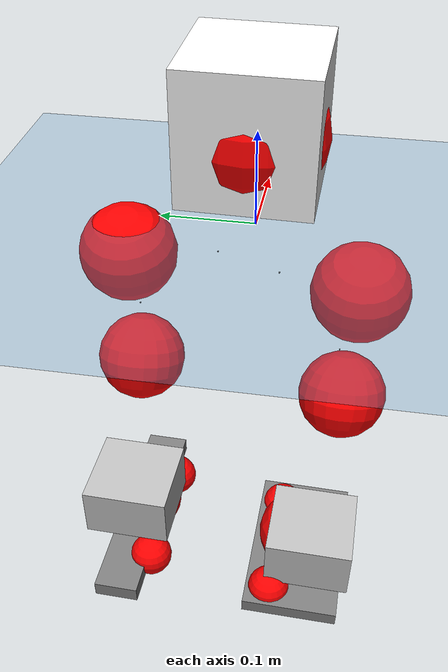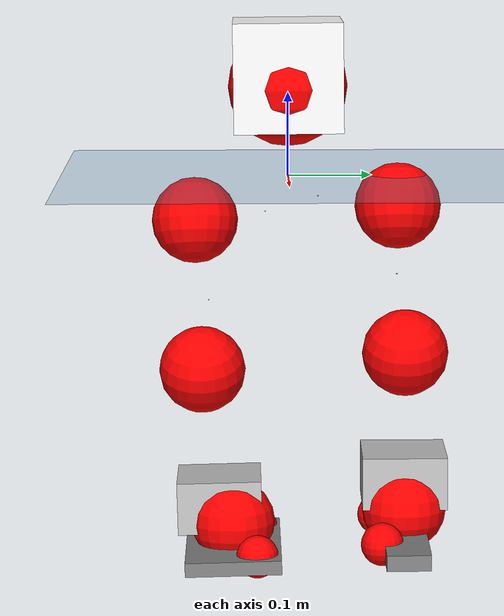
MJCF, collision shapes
<mujoco model="pi_12dof_release_v1">
  <compiler angle="radian" assetdir="assets" balanceinertia="true" inertiafromgeom="false"/>

  <option timestep="0.005" density="1.2" viscosity="2e-05"/>

  <size nkey="1"/>

  <visual>
    <quality shadowsize="8192"/>
    <map shadowclip="0.5"/>
  </visual>

  <default>
    <default class="/">
      <joint armature="0.01" damping="0.01" frictionloss="0.01"/>
      <geom contype="0" conaffinity="0" group="1" solref="-1000 -80"/>
      <site size="0.01 0.005 0.005" group="5"/>
      <general forcelimited="true" biastype="affine" gainprm="20" biasprm="0 -20 -0.5"/>
      <default class="foot">
        <geom size="0.0845 0.036 0.005" type="box" condim="6" group="4" priority="1" friction="0.9 0.2 0.2" solimp="0.015 1 0.005"/>
      </default>
      <default class="reward_collision_sphere">
        <geom group="5" rgba="1 0 0 1"/>
      </default>
    </default>
  </default>

  <asset>
    <texture type="skybox" colorspace="auto" name="//unnamed_texture_0" builtin="gradient" rgb1="0.95 0.95 0.95" rgb2="0.95 0.95 0.95" width="100" height="600"/>
    <texture type="2d" colorspace="auto" name="texplane" builtin="checker" rgb1="0.345 0.575 0.748" rgb2="0.345 0.575 0.748" markrgb="1 1 1" width="512" height="512"/>
    <material name="MatPlane" class="/" texture="texplane" texuniform="true" texrepeat="2 2" specular="0.9"/>
    <mesh name="baselink_1" class="/" file="baselink_1.STL"/>
    <mesh name="r_hip_pitch_link" class="/" file="r_hip_pitch_link.STL"/>
    <mesh name="r_hip_roll_link" class="/" file="r_hip_roll_link.STL"/>
    <mesh name="r_thigh_link" class="/" file="r_thigh_link.STL"/>
    <mesh name="r_calf_link" class="/" file="r_calf_link.STL"/>
    <mesh name="r_ankle_pitch_link" class="/" file="r_ankle_pitch_link.STL"/>
    <mesh name="r_ankle_roll_link" class="/" file="r_ankle_roll_link.STL"/>
    <mesh name="l_hip_pitch_link" class="/" file="l_hip_pitch_link.STL"/>
    <mesh name="l_hip_roll_link" class="/" file="l_hip_roll_link.STL"/>
    <mesh name="l_thigh_link" class="/" file="l_thigh_link.STL"/>
    <mesh name="l_calf_link" class="/" file="l_calf_link.STL"/>
    <mesh name="l_ankle_pitch_link" class="/" file="l_ankle_pitch_link.STL"/>
    <mesh name="l_ankle_roll_link" class="/" file="l_ankle_roll_link.STL"/>
  </asset>

  <worldbody>
    <geom name="floor" class="/" size="100 100 0.125" type="plane" group="0" material="MatPlane"/>
    <light name="toplight_shadow" class="/" pos="0 0 5" dir="0.0990148 0.0990148 -0.990148" type="directional" ambient="0.04 0.04 0.04" diffuse="0.55 0.55 0.55" specular="0.12 0.12 0.12"/>
    <light name="toplight_fill" class="/" pos="0 0 5" dir="0.0990148 0.0990148 -0.990148" type="directional" castshadow="false" ambient="0.04 0.04 0.04" diffuse="0.3 0.3 0.3" specular="0.08 0.08 0.08"/>
    <body name="trunk" pos="-0.0154448 0.00126105 0.00775208" quat="0.999976 0.00510855 -0.00404996 -0.00253452">
      <inertial pos="0.0172526 -0.00753336 0.0595201" quat="0.697865 -0.000561104 0.0225539 0.715874" mass="5.26657" diaginertia="0.0109286 0.0570087 0.0190872"/>
      <joint name="//unnamed_joint_0" type="free"/>
      <geom name="//unnamed_geom_1" class="/" type="mesh" density="0" rgba="1 1 1 1" mesh="baselink_1"/>
      <geom name="//unnamed_geom_2" class="/" size="0.0653286 0.0653286 0.0653286" pos="0 0 0.112279" type="box" rgba="1 1 1 1"/>
      <geom name="//unnamed_geom_3" class="reward_collision_sphere" size="0.0718614" pos="0 0 0.0982445"/>
      <site name="imu" class="/" pos="0.00760209 -0.0433622 -0.0677169" size="0.0130657"/>
      <camera name="track" class="/" pos="0 -2.95068 0" quat="0.707107 0.707107 0 0" mode="trackcom"/>
      <camera name="ego_camera" class="/" pos="0.078066 0 0.252629" quat="-0.5 -0.5 0.5 0.5"/>
      <body name="r_hip_pitch_link" pos="-0.000571092 -0.029274 -0.0532595" quat="0.992231 -0.000137899 -0.12435 0.0037392">
        <inertial pos="-0.00310255 -0.070576 0.00224174" quat="-0.0270577 0.708902 -0.0259583 0.70431" mass="0.859283" diaginertia="0.000101447 0.000582916 0.000449543"/>
        <joint name="r_hip_pitch_joint" class="/" pos="0 0 0" axis="0.0396299 -0.999181 -0.00822636" stiffness="0.0243169" range="-1.58661 1.19016" armature="0.0170163" damping="0" frictionloss="0.00581632"/>
        <geom name="//unnamed_geom_4" class="/" type="mesh" density="0" rgba="0.75294 0.75294 0.75294 1" mesh="r_hip_pitch_link"/>
        <geom name="//unnamed_geom_5" class="/" size="0.000653286 0.000653286 0.000653286" type="box" rgba="0.75294 0.75294 0.75294 1"/>
        <body name="r_hip_roll_link" pos="-0.00779549 -0.085327 -0.00885127" quat="0.99998 0.00601891 0.000792763 0.00175776">
          <inertial pos="-0.0126182 0.0102078 -0.071554" quat="0.705509 -0.0790294 -0.0823192 0.699454" mass="0.997936" diaginertia="0.00041784 0.00217362 0.00063758"/>
          <joint name="r_hip_roll_joint" class="/" pos="0 0 0" axis="-0.998452 -0.0264917 -0.0489085" range="-0.0212239 0.714212" armature="0.0171486" damping="0.0722824" frictionloss="0.00499972"/>
          <geom name="//unnamed_geom_6" class="/" type="mesh" density="0" rgba="0.75294 0.75294 0.75294 1" mesh="r_hip_roll_link"/>
          <geom name="//unnamed_geom_7" class="/" size="0.000653286 0.000653286 0.000653286" type="box" rgba="0.75294 0.75294 0.75294 1"/>
          <geom name="//unnamed_geom_8" class="reward_collision_sphere" size="0.0522629"/>
          <body name="r_thigh_link" pos="-0.0024303 0.0139446 -0.097354" quat="0.999988 -0.00189562 0.000408442 -0.00441644">
            <inertial pos="0.0121791 0.000832278 -0.0769524" quat="0.730788 0.681855 0.0126459 -0.0293729" mass="0.241002" diaginertia="0.000136647 0.000465585 0.000236209"/>
            <joint name="r_thigh_joint" class="/" pos="0 0 0" axis="0.00425642 0.00331408 -0.999985" stiffness="0.0460713" range="-0.0652363 0.408515" armature="0.0185499" damping="0" frictionloss="0.0232042"/>
            <geom name="//unnamed_geom_9" class="/" type="mesh" density="0" rgba="0.75294 0.75294 0.75294 1" mesh="r_thigh_link"/>
            <geom name="//unnamed_geom_10" class="/" size="0.000653286 0.000653286 0.000653286" type="box" rgba="0.75294 0.75294 0.75294 1"/>
            <body name="r_calf_link" pos="-0.0024105 -0.00913824 -0.0845045" quat="0.949304 0.00214245 0.314349 -0.00111794">
              <inertial pos="-0.00862095 0.011418 -0.0993822" quat="0.99777 -0.0531299 0.0217563 0.034052" mass="1.82939" diaginertia="0.00545087 0.0273136 0.00118683"/>
              <joint name="r_calf_joint" class="/" pos="0 0 0" axis="-0.0117414 -0.997996 0.062186" stiffness="0.0638359" range="-1.94895 0.692554" armature="0.0154539" damping="0" frictionloss="0.00564845"/>
              <geom name="//unnamed_geom_11" class="/" type="mesh" density="0" rgba="0.75294 0.75294 0.75294 1" mesh="r_calf_link"/>
              <geom name="//unnamed_geom_12" class="/" size="0.000653286 0.000653286 0.000653286" type="box" rgba="0.75294 0.75294 0.75294 1"/>
              <geom name="//unnamed_geom_13" class="reward_collision_sphere" size="0.0522629"/>
              <body name="r_ankle_pitch_link" pos="0.000880535 0.0152612 -0.196843" quat="0.980067 -0.000107172 -0.198668 0.000134128">
                <inertial pos="-0.00393725 0.0165134 0.00175358" quat="-0.0413734 0.69958 0.0200952 0.713072" mass="0.379375" diaginertia="0.000421829 0.00182528 0.00060619"/>
                <joint name="r_ankle_pitch_joint" class="/" pos="0 0 0" axis="0.0557147 -0.997499 -0.0434998" range="-1.44888 0.484389" armature="0.0123141" damping="0.0636067" frictionloss="0.00721391"/>
                <geom name="//unnamed_geom_14" class="/" type="mesh" density="0" rgba="0.75294 0.75294 0.75294 1" mesh="r_ankle_pitch_link"/>
                <geom name="//unnamed_geom_15" class="/" size="0.0509563 0.0522629 0.0326643" type="box" rgba="0.75294 0.75294 0.75294 1"/>
                <body name="r_ankle_roll_link" pos="0.0781141 0.0159082 0.00582022" quat="1 7.26589e-05 -0.000269922 -0.000349932">
                  <inertial pos="-0.0256129 -0.000780876 -0.0202136" quat="0.541067 0.463583 0.471995 0.519189" mass="1.17822" diaginertia="0.00137851 0.00732465 0.00176996"/>
                  <joint name="r_ankle_roll_joint" class="/" pos="0 0 0" axis="-0.997263 -0.0280451 0.0684142" range="0.126113 0.131214" armature="0.00452359" damping="0.0166835" frictionloss="0.0126603"/>
                  <geom name="//unnamed_geom_16" class="/" type="mesh" density="0" rgba="0.75294 0.75294 0.75294 1" mesh="r_ankle_roll_link"/>
                  <geom name="//unnamed_geom_17" class="/" type="mesh" rgba="0.75294 0.75294 0.75294 1" mesh="r_ankle_roll_link"/>
                  <geom name="right_foot" class="foot" size="0.101721 0.0587332 0.00864767" pos="-0.0530849 0 -0.0617537"/>
                  <geom name="//unnamed_geom_19" class="reward_collision_sphere" size="0.0522629" pos="-0.052044 0 -0.0280699"/>
                  <geom name="//unnamed_geom_20" class="reward_collision_sphere" size="0.0261314" pos="0.0156132 0.0295068 -0.0561397"/>
                  <geom name="//unnamed_geom_21" class="reward_collision_sphere" size="0.0261314" pos="-0.124906 0.0295068 -0.0561397"/>
                  <site name="right_foot" class="foot" pos="-0.0530849 0 -0.0617537" size="0.0130657"/>
                </body>
              </body>
            </body>
          </body>
        </body>
      </body>
      <body name="l_hip_pitch_link" pos="-0.000596527 0.0351347 -0.0351762" quat="0.992195 -4.47219e-05 -0.124693 2.14148e-05">
        <inertial pos="-0.00556146 0.0657892 0.0107108" quat="-0.102018 0.668945 0.0381515 0.735289" mass="0.67912" diaginertia="0.000146011 0.000699727 0.00043253"/>
        <joint name="l_hip_pitch_joint" class="/" pos="0 0 0" axis="-0.053581 0.997103 0.0539942" stiffness="0.0320177" range="-1.36843 1.77861" armature="0.0139304" damping="0" frictionloss="0.0137629"/>
        <geom name="//unnamed_geom_22" class="/" type="mesh" density="0" rgba="0.75294 0.75294 0.75294 1" mesh="l_hip_pitch_link"/>
        <geom name="//unnamed_geom_23" class="/" size="0.000653286 0.000653286 0.000653286" type="box" rgba="0.75294 0.75294 0.75294 1"/>
        <body name="l_hip_roll_link" pos="-0.000606339 0.096726 -0.0132589" quat="0.999999 0.000280235 0.000527145 -0.00111464">
          <inertial pos="-0.000360852 -0.000343772 -0.088531" quat="0.709086 -0.10057 -0.0828704 0.692975" mass="0.665052" diaginertia="0.000379007 0.00174955 0.000574611"/>
          <joint name="l_hip_roll_joint" class="/" pos="0 0 0" axis="-0.999563 0.0268213 -0.0124077" stiffness="0.0785473" range="-0.452569 -0.119574" armature="0.0178846" damping="0.00017585" frictionloss="0.0170145"/>
          <geom name="//unnamed_geom_24" class="/" type="mesh" density="0" rgba="0.75294 0.75294 0.75294 1" mesh="l_hip_roll_link"/>
          <geom name="//unnamed_geom_25" class="/" size="0.000653286 0.000653286 0.000653286" type="box" rgba="0.75294 0.75294 0.75294 1"/>
          <geom name="//unnamed_geom_26" class="reward_collision_sphere" size="0.0522629"/>
          <body name="l_thigh_link" pos="-0.000486661 -0.00236584 -0.083131" quat="0.999998 0.00110335 -0.00151109 -0.000297955">
            <inertial pos="0.00609901 -0.0167141 -0.0681317" quat="0.681359 0.730785 0.00758533 0.0405825" mass="0.233424" diaginertia="0.000156891 0.000605953 0.000347773"/>
            <joint name="l_thigh_joint" class="/" pos="0 0 0" axis="0.0243269 0.0182148 -0.999538" range="-0.618871 0.0864158" armature="0.00806781" damping="0.0740673" frictionloss="0.00758176"/>
            <geom name="//unnamed_geom_27" class="/" type="mesh" density="0" rgba="0.75294 0.75294 0.75294 1" mesh="l_thigh_link"/>
            <geom name="//unnamed_geom_28" class="/" size="0.000653286 0.000653286 0.000653286" type="box" rgba="0.75294 0.75294 0.75294 1"/>
            <body name="l_calf_link" pos="-0.00616357 0.00825918 -0.0954606" quat="0.947611 -0.00349197 0.319344 -0.00633686">
              <inertial pos="-0.0145255 -0.00541041 -0.0831463" quat="0.99866 0.00684717 0.0501714 -0.0107066" mass="1.85762" diaginertia="0.00434976 0.0248959 0.000982385"/>
              <joint name="l_calf_joint" class="/" pos="0 0 0" axis="-0.0145373 0.999094 0.0400033" stiffness="0.0225572" range="-0.598478 1.835" armature="0.00989831" damping="0.000448858" frictionloss="0.0213005"/>
              <geom name="//unnamed_geom_29" class="/" type="mesh" density="0" rgba="0.75294 0.75294 0.75294 1" mesh="l_calf_link"/>
              <geom name="//unnamed_geom_30" class="/" size="0.000653286 0.000653286 0.000653286" type="box" rgba="0.75294 0.75294 0.75294 1"/>
              <geom name="//unnamed_geom_31" class="reward_collision_sphere" size="0.0522629"/>
              <body name="l_ankle_pitch_link" pos="0.00471865 0.00131163 -0.181632" quat="0.980041 -0.00035351 -0.198792 -0.000746173">
                <inertial pos="0.00723026 -0.000520877 -0.00142045" quat="-0.00152578 0.705712 0.00289804 0.708491" mass="0.458106" diaginertia="0.000393507 0.00136675 0.000665362"/>
                <joint name="l_ankle_pitch_joint" class="/" pos="0 0 0" axis="0.00041926 0.999984 -0.00566555" stiffness="0.0450367" range="-0.52624 1.2759" armature="0.0124433" damping="0.0282935" frictionloss="0.00827366"/>
                <geom name="//unnamed_geom_32" class="/" type="mesh" density="0" rgba="0.75294 0.75294 0.75294 1" mesh="l_ankle_pitch_link"/>
                <geom name="//unnamed_geom_33" class="/" size="0.0509563 0.0522629 0.0326643" type="box" rgba="0.75294 0.75294 0.75294 1"/>
                <body name="l_ankle_roll_link" pos="0.0752888 -0.000263863 -0.0080115" quat="1 0.000189887 0.000289205 0.000510109">
                  <inertial pos="-0.0138942 -0.00208337 -0.0205151" quat="0.592226 0.431142 0.410351 0.543136" mass="1.1599" diaginertia="0.0012542 0.00710253 0.00129084"/>
                  <joint name="l_ankle_roll_joint" class="/" pos="0 0 0" axis="-0.997388 -0.0459493 -0.0557384" stiffness="0.064057" range="-0.181632 0.00150616" armature="0.0170557" damping="0" frictionloss="0.0175048"/>
                  <geom name="//unnamed_geom_34" class="/" type="mesh" density="0" rgba="0.75294 0.75294 0.75294 1" mesh="l_ankle_roll_link"/>
                  <geom name="//unnamed_geom_35" class="/" type="mesh" rgba="0.75294 0.75294 0.75294 1" mesh="l_ankle_roll_link"/>
                  <geom name="left_foot" class="foot" size="0.133671 0.0267932 0.0096083" pos="-0.0530849 0 -0.0617537"/>
                  <geom name="//unnamed_geom_37" class="reward_collision_sphere" size="0.0522629" pos="-0.052044 0 -0.0280699"/>
                  <geom name="//unnamed_geom_38" class="reward_collision_sphere" size="0.0261314" pos="0.0156132 -0.0295068 -0.0561397"/>
                  <geom name="//unnamed_geom_39" class="reward_collision_sphere" size="0.0261314" pos="-0.124906 -0.0295068 -0.0561397"/>
                  <site name="left_foot" class="foot" pos="-0.0530849 0 -0.0617537" size="0.0130657"/>
                </body>
              </body>
            </body>
          </body>
        </body>
      </body>
    </body>
  </worldbody>

  <contact>
    <pair class="/" geom1="floor" geom2="right_foot" name="//unnamed_contact_1"/>
    <pair class="/" geom1="floor" geom2="left_foot" name="//unnamed_contact_0"/>
  </contact>

  <actuator>
    <general name="r_hip_pitch_joint" class="/" joint="r_hip_pitch_joint" forcerange="-27.2984 27.2984" gainprm="25.8702" biasprm="0 -25.8702 -0.540216"/>
    <general name="r_hip_roll_joint" class="/" joint="r_hip_roll_joint" forcerange="-17.7813 17.7813" gainprm="25.8702" biasprm="0 -25.8702 -0.540216"/>
    <general name="r_thigh_joint" class="/" joint="r_thigh_joint" forcerange="-30.7246 30.7246" gainprm="25.8702" biasprm="0 -25.8702 -0.540216"/>
    <general name="r_calf_joint" class="/" joint="r_calf_joint" forcerange="-11.8256 11.8256" gainprm="25.8702" biasprm="0 -25.8702 -0.540216"/>
    <general name="r_ankle_pitch_joint" class="/" joint="r_ankle_pitch_joint" forcerange="-23.6909 23.6909" gainprm="25.8702" biasprm="0 -25.8702 -0.540216"/>
    <general name="r_ankle_roll_joint" class="/" joint="r_ankle_roll_joint" forcerange="-41.3807 41.3807" gainprm="25.8702" biasprm="0 -25.8702 -0.540216"/>
    <general name="l_hip_pitch_joint" class="/" joint="l_hip_pitch_joint" forcerange="-27.2473 27.2473" gainprm="25.8702" biasprm="0 -25.8702 -0.540216"/>
    <general name="l_hip_roll_joint" class="/" joint="l_hip_roll_joint" forcerange="-36.1756 36.1756" gainprm="25.8702" biasprm="0 -25.8702 -0.540216"/>
    <general name="l_thigh_joint" class="/" joint="l_thigh_joint" forcerange="-29.9179 29.9179" gainprm="25.8702" biasprm="0 -25.8702 -0.540216"/>
    <general name="l_calf_joint" class="/" joint="l_calf_joint" forcerange="-28.0702 28.0702" gainprm="25.8702" biasprm="0 -25.8702 -0.540216"/>
    <general name="l_ankle_pitch_joint" class="/" joint="l_ankle_pitch_joint" forcerange="-18.8165 18.8165" gainprm="25.8702" biasprm="0 -25.8702 -0.540216"/>
    <general name="l_ankle_roll_joint" class="/" joint="l_ankle_roll_joint" forcerange="-26.7297 26.7297" gainprm="25.8702" biasprm="0 -25.8702 -0.540216"/>
  </actuator>

  <sensor>
    <gyro site="imu" name="imu_angular_velocity"/>
    <velocimeter site="imu" name="imu_linear_velocity"/>
    <framelinvel objtype="site" objname="left_foot" name="left_foot_global_linear_velocity"/>
    <framelinvel objtype="site" objname="right_foot" name="right_foot_global_linear_velocity"/>
  </sensor>

  <keyframe>
    <key name="home" qpos="0 0 0.291 1 0 0 0 0.4 0 0 -0.8 0.4 0 -0.4 0 0 0.8 -0.4 0"/>
  </keyframe>
</mujoco>
